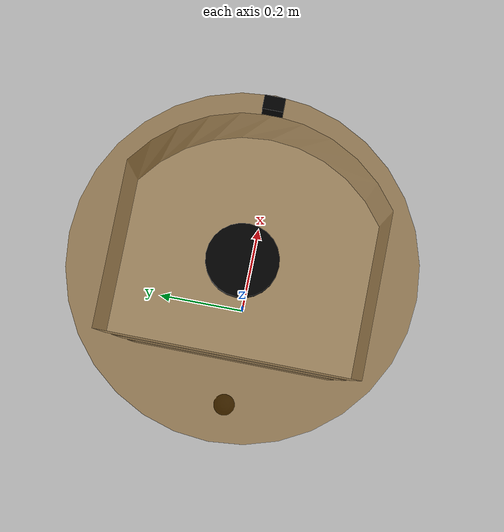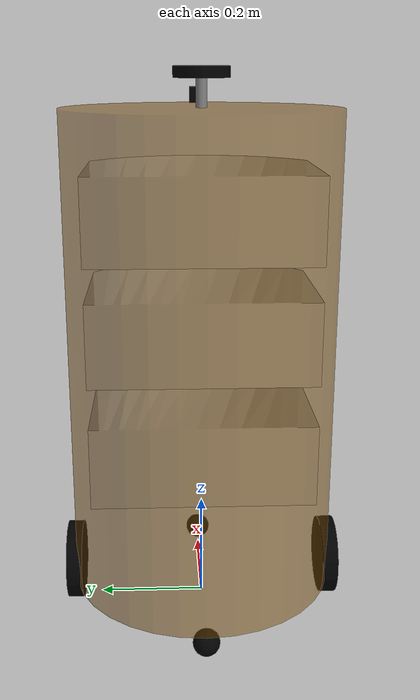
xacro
<?xml version="1.0" ?>
<!-- |    This document was autogenerated by xacro from test.xacro                     | -->
<!-- |    EDITING THIS FILE BY HAND IS NOT RECOMMENDED                                 | -->
<!-- 组合小车底盘与摄像头 -->
<robot name="my_car_camera">
  <!-- 质量  -->
  <!-- 底盘 -->
  <link name="base_footprint">
    <visual>
      <geometry>
        <sphere radius="0.001"/>
      </geometry>
    </visual>
  </link>
  <link name="base_link">
    <visual>
      <geometry>
        <mesh filename="/home/zj/graduate_design/src/zj_base/meshes/modle.stl"/>
      </geometry>
      <origin rpy="0 0 0" xyz="0 0 0"/>
      <material name="yellow">
        <color rgba="0.5 0.3 0.0 0.5"/>
      </material>
    </visual>
    <collision>
      <geometry>
        <cylinder length="0.9" radius="0.25"/>
      </geometry>
      <origin rpy="0 0 0" xyz="0 0 0"/>
    </collision>
    <inertial>
      <mass value="5.0"/>
      <inertia ixx="0.4156250000000001" ixy="0" ixz="0" iyy="0.4156250000000001" iyz="0" izz="0.15625"/>
    </inertial>
  </link>
  <joint name="base_link2base_footprint" type="fixed">
    <parent link="base_footprint"/>
    <child link="base_link"/>
    <origin xyz="0 0 0.5"/>
  </joint>
  <gazebo reference="base_link">
    <material>Gazebo/Yellow</material>
  </gazebo>
  <!-- 质量  -->
  <link name="left_wheel">
    <visual>
      <geometry>
        <cylinder length="0.03" radius="0.075"/>
      </geometry>
      <origin rpy="1.5707963 0.0 0.0" xyz="0.0 0.0 0.0"/>
      <material name="black">
        <color rgba="0.0 0.0 0.0 1.0"/>
      </material>
    </visual>
    <collision>
      <geometry>
        <cylinder length="0.03" radius="0.075"/>
      </geometry>
      <origin rpy="1.5707963 0.0 0.0" xyz="0.0 0.0 0.0"/>
    </collision>
    <inertial>
      <mass value="0.2"/>
      <inertia ixx="0.00029625" ixy="0" ixz="0" iyy="0.00029625" iyz="0" izz="0.0005625"/>
    </inertial>
  </link>
  <joint name="left_wheel2base_link" type="continuous">
    <parent link="base_link"/>
    <child link="left_wheel"/>
    <origin xyz="0 0.25 -0.425"/>
    <axis xyz="0 1 0"/>
  </joint>
  <gazebo reference="left_wheel">
    <material>Gazebo/Black</material>
  </gazebo>
  <link name="right_wheel">
    <visual>
      <geometry>
        <cylinder length="0.03" radius="0.075"/>
      </geometry>
      <origin rpy="1.5707963 0.0 0.0" xyz="0.0 0.0 0.0"/>
      <material name="black">
        <color rgba="0.0 0.0 0.0 1.0"/>
      </material>
    </visual>
    <collision>
      <geometry>
        <cylinder length="0.03" radius="0.075"/>
      </geometry>
      <origin rpy="1.5707963 0.0 0.0" xyz="0.0 0.0 0.0"/>
    </collision>
    <inertial>
      <mass value="0.2"/>
      <inertia ixx="0.00029625" ixy="0" ixz="0" iyy="0.00029625" iyz="0" izz="0.0005625"/>
    </inertial>
  </link>
  <joint name="right_wheel2base_link" type="continuous">
    <parent link="base_link"/>
    <child link="right_wheel"/>
    <origin xyz="0 -0.25 -0.425"/>
    <axis xyz="0 1 0"/>
  </joint>
  <gazebo reference="right_wheel">
    <material>Gazebo/Black</material>
  </gazebo>
  <!-- 质量  -->
  <link name="front_wheel">
    <visual>
      <geometry>
        <sphere radius="0.025"/>
      </geometry>
      <origin rpy="0 0 0" xyz="0 0 0"/>
      <material name="black">
        <color rgba="0.0 0.0 0.0 1.0"/>
      </material>
    </visual>
    <collision>
      <geometry>
        <sphere radius="0.025"/>
      </geometry>
      <origin rpy="0 0 0" xyz="0 0 0"/>
    </collision>
    <inertial>
      <mass value="0.1"/>
      <inertia ixx="2.5000000000000005e-05" ixy="0" ixz="0" iyy="2.5000000000000005e-05" iyz="0" izz="2.5000000000000005e-05"/>
    </inertial>
  </link>
  <joint name="front_wheel2base_link" type="continuous">
    <parent link="base_link"/>
    <child link="front_wheel"/>
    <origin xyz="0.225 0 -0.47500000000000003"/>
    <axis xyz="1 0 0"/>
  </joint>
  <gazebo reference="front_wheel">
    <material>Gazebo/Black</material>
    <mu1>0.0</mu1>
    <!-- 滚动摩擦 -->
    <mu2>0.0</mu2>
    <!-- 滑动摩擦 -->
    <kp>1000000.0</kp>
    <kd>100.0</kd>
  </gazebo>
  <link name="back_wheel">
    <visual>
      <geometry>
        <sphere radius="0.025"/>
      </geometry>
      <origin rpy="0 0 0" xyz="0 0 0"/>
      <material name="black">
        <color rgba="0.0 0.0 0.0 1.0"/>
      </material>
    </visual>
    <collision>
      <geometry>
        <sphere radius="0.025"/>
      </geometry>
      <origin rpy="0 0 0" xyz="0 0 0"/>
    </collision>
    <inertial>
      <mass value="0.1"/>
      <inertia ixx="2.5000000000000005e-05" ixy="0" ixz="0" iyy="2.5000000000000005e-05" iyz="0" izz="2.5000000000000005e-05"/>
    </inertial>
  </link>
  <joint name="back_wheel2base_link" type="continuous">
    <parent link="base_link"/>
    <child link="back_wheel"/>
    <origin xyz="-0.225 0 -0.47500000000000003"/>
    <axis xyz="1 0 0"/>
  </joint>
  <gazebo reference="back_wheel">
    <material>Gazebo/Black</material>
    <mu1>0.0</mu1>
    <!-- 滚动摩擦 -->
    <mu2>0.0</mu2>
    <!-- 滑动摩擦 -->
    <kp>1000000.0</kp>
    <kd>100.0</kd>
  </gazebo>
  <transmission name="left_wheel2base_link_trans">
    <type>transmission_interface/SimpleTransmission</type>
    <joint name="left_wheel2base_link">
      <hardwareInterface>hardware_interface/VelocityJointInterface</hardwareInterface>
    </joint>
    <actuator name="left_wheel2base_link_motor">
      <hardwareInterface>hardware_interface/VelocityJointInterface</hardwareInterface>
      <mechanicalReduction>1</mechanicalReduction>
    </actuator>
  </transmission>
  <transmission name="right_wheel2base_link_trans">
    <type>transmission_interface/SimpleTransmission</type>
    <joint name="right_wheel2base_link">
      <hardwareInterface>hardware_interface/VelocityJointInterface</hardwareInterface>
    </joint>
    <actuator name="right_wheel2base_link_motor">
      <hardwareInterface>hardware_interface/VelocityJointInterface</hardwareInterface>
      <mechanicalReduction>1</mechanicalReduction>
    </actuator>
  </transmission>
  <!-- Gazebo ROS Control 插件 -->
  <gazebo>
    <plugin filename="libgazebo_ros_control.so" name="gazebo_ros_control">
      <robotNamespace>/</robotNamespace>
      <robotSimType>gazebo_ros_control/DefaultRobotHWSim</robotSimType>
      <controlPeriod>0.001</controlPeriod>
    </plugin>
  </gazebo>
  <!-- 支架安装的z坐标:底盘高度 / 2 + 支架高度 / 2  -->
  <link name="suport">
    <visual>
      <geometry>
        <cylinder length="0.05" radius="0.01"/>
      </geometry>
      <origin rpy="0 0 0" xyz="0.0 0.0 0.0"/>
      <material name="grey">
        <color rgba="0.5 0.5 0.5 1.0"/>
      </material>
    </visual>
    <collision>
      <geometry>
        <cylinder length="0.05" radius="0.01"/>
      </geometry>
      <origin rpy="0 0 0" xyz="0.0 0.0 0.0"/>
    </collision>
    <inertial>
      <origin xyz="0 0 0"/>
      <mass value="0.1"/>
      <inertia ixx="0.0001" ixy="0" ixz="0" iyy="0.0001" iyz="0" izz="0.0001"/>
    </inertial>
  </link>
  <joint name="support2base_link" type="fixed">
    <parent link="base_link"/>
    <child link="suport"/>
    <origin rpy="0 0 0" xyz="0 0 0.47500000000000003"/>
  </joint>
  <link name="laser">
    <visual>
      <geometry>
        <cylinder length="0.02" radius="0.05"/>
      </geometry>
      <origin rpy="0 0 0" xyz="0 0 0"/>
      <material name="black">
        <color rgba="0.0 0.0 0.0 1.0"/>
      </material>
    </visual>
    <collision>
      <geometry>
        <cylinder length="0.02" radius="0.05"/>
      </geometry>
      <origin rpy="0 0 0" xyz="0 0 0"/>
    </collision>
    <inertial>
      <origin xyz="0 0 0"/>
      <mass value="0.2"/>
      <inertia ixx="0.0001" ixy="0" ixz="0" iyy="0.0001" iyz="0" izz="0.0001"/>
    </inertial>
  </link>
  <joint name="laser2support" type="fixed">
    <parent link="suport"/>
    <child link="laser"/>
    <origin rpy="0 0 0" xyz="0 0 0.035"/>
  </joint>
  <!-- 雷达 -->
  <gazebo reference="laser">
    <sensor name="rplidar" type="ray">
      <pose>0 0 0 0 0 0</pose>
      <visualize>false</visualize>
      <update_rate>5.5</update_rate>
      <ray>
        <scan>
          <horizontal>
            <samples>360</samples>
            <resolution>1</resolution>
            <min_angle>-3.14159</min_angle>
            <max_angle>3.14159</max_angle>
          </horizontal>
        </scan>
        <range>
          <min>0.10</min>
          <max>30.0</max>
          <resolution>0.01</resolution>
        </range>
        <noise>
          <type>gaussian</type>
          <mean>0.0</mean>
          <stddev>0.01</stddev>
        </noise>
      </ray>
      <plugin filename="libgazebo_ros_laser.so" name="gazebo_rplidar">
        <topicName>/scan</topicName>
        <frameName>laser</frameName>
      </plugin>
    </sensor>
  </gazebo>
  <link name="camera">
    <visual>
      <geometry>
        <box size="0.03 0.02 0.03"/>
      </geometry>
      <origin rpy="0 0 1.5705" xyz="0 0 0"/>
      <material name="black">
        <color rgba="0.0 0.0 0.0 1.0"/>
      </material>
    </visual>
    <collision>
      <geometry>
        <box size="0.03 0.02 0.03"/>
      </geometry>
      <origin rpy="0 0 1.5705" xyz="0 0 0"/>
    </collision>
    <inertial>
      <origin xyz="0 0 0"/>
      <mass value="0.1"/>
      <inertia ixx="0.0001" ixy="0" ixz="0" iyy="0.0001" iyz="0" izz="0.0001"/>
    </inertial>
  </link>
  <joint name="camera2base_link" type="fixed">
    <parent link="base_link"/>
    <child link="camera"/>
    <origin rpy="0 0 0" xyz="0.23 0.0 0.465"/>
  </joint>
  <gazebo reference="camera">
    <material>Gazebo/Black</material>
  </gazebo>
  <!-- 被引用的link -->
  <gazebo reference="camera">
    <!-- 类型设置为 camara -->
    <sensor name="camera_node" type="camera">
      <update_rate>30.0</update_rate>
      <!-- 更新频率 -->
      <!-- 摄像头基本信息设置 -->
      <camera name="head">
        <horizontal_fov>1.3962634</horizontal_fov>
        <image>
          <width>1280</width>
          <height>720</height>
          <format>R8G8B8</format>
        </image>
        <clip>
          <near>0.02</near>
          <far>300</far>
        </clip>
        <noise>
          <type>gaussian</type>
          <mean>0.0</mean>
          <stddev>0.007</stddev>
        </noise>
      </camera>
      <!-- 核心插件 -->
      <plugin filename="libgazebo_ros_camera.so" name="gazebo_camera">
        <alwaysOn>true</alwaysOn>
        <updateRate>0.0</updateRate>
        <cameraName>/camera</cameraName>
        <imageTopicName>image_raw</imageTopicName>
        <cameraInfoTopicName>camera_info</cameraInfoTopicName>
        <frameName>camera</frameName>
        <hackBaseline>0.07</hackBaseline>
        <distortionK1>0.0</distortionK1>
        <distortionK2>0.0</distortionK2>
        <distortionK3>0.0</distortionK3>
        <distortionT1>0.0</distortionT1>
        <distortionT2>0.0</distortionT2>
      </plugin>
    </sensor>
  </gazebo>
  <gazebo reference="kinect link名称">
    <sensor name="camera" type="depth">
      <always_on>true</always_on>
      <update_rate>20.0</update_rate>
      <camera>
        <horizontal_fov>1.0470000000000002</horizontal_fov>
        <image>
          <format>R8G8B8</format>
          <width>640</width>
          <height>480</height>
        </image>
        <clip>
          <near>0.05</near>
          <far>8.0</far>
        </clip>
      </camera>
      <plugin filename="libgazebo_ros_openni_kinect.so" name="kinect_camera_controller">
        <cameraName>camera</cameraName>
        <alwaysOn>true</alwaysOn>
        <updateRate>10</updateRate>
        <imageTopicName>rgb/image_raw</imageTopicName>
        <depthImageTopicName>depth/image_raw</depthImageTopicName>
        <pointCloudTopicName>depth/points</pointCloudTopicName>
        <cameraInfoTopicName>rgb/camera_info</cameraInfoTopicName>
        <depthImageCameraInfoTopicName>depth/camera_info</depthImageCameraInfoTopicName>
        <frameName>kinect link名称</frameName>
        <baseline>0.1</baseline>
        <distortion_k1>0.0</distortion_k1>
        <distortion_k2>0.0</distortion_k2>
        <distortion_k3>0.0</distortion_k3>
        <distortion_t1>0.0</distortion_t1>
        <distortion_t2>0.0</distortion_t2>
        <pointCloudCutoff>0.4</pointCloudCutoff>
      </plugin>
    </sensor>
  </gazebo>
  <!-- 抽屉组件1 - 只优化物理参数，保持位置不变 -->
  <link name="drawer">
    <visual>
      <geometry>
        <mesh filename="package://zj_base/meshes/box.stl"/>
      </geometry>
      <origin rpy="0 0 0" xyz="0 0 0"/>
      <material name="drawer_material">
        <color rgba="0.8 0.8 0.8 1.0"/>
      </material>
    </visual>
    <collision>
      <geometry>
        <mesh filename="package://zj_base/meshes/box.stl"/>
      </geometry>
      <origin rpy="0 0 0" xyz="0 0 0"/>
      <surface>
        <friction>
          <ode>
            <mu>0.3</mu>
            <!-- 大幅降低摩擦 -->
            <mu2>0.1</mu2>
            <!-- 大幅降低摩擦 -->
          </ode>
        </friction>
      </surface>
    </collision>
    <inertial>
      <origin xyz="0 0 0"/>
      <mass value="0.5"/>
      <!-- 减轻质量 -->
      <inertia ixx="0.0001" ixy="0" ixz="0" iyy="0.0001" iyz="0" izz="0.0001"/>
      <!-- 减小惯性 -->
    </inertial>
  </link>
  <joint name="drawer2base_link" type="prismatic">
    <parent link="base_link"/>
    <child link="drawer"/>
    <origin rpy="0 0 0" xyz="0 0 0"/>
    <!-- 保持位置不变 -->
    <axis xyz="1 0 0"/>
    <limit effort="500" lower="0" upper="0.2" velocity="2.0"/>
    <!-- 只增加effort -->
    <dynamics damping="0.01" friction="0.0"/>
    <!-- 大幅减少阻尼和摩擦 -->
  </joint>
  <gazebo reference="drawer">
    <material>Gazebo/Grey</material>
    <mu1>0.3</mu1>
    <!-- 降低Gazebo摩擦 -->
    <mu2>0.1</mu2>
    <!-- 降低Gazebo摩擦 -->
    <kp>100000.0</kp>
    <!-- 降低接触刚度 -->
    <kd>100.0</kd>
    <!-- 降低接触阻尼 -->
  </gazebo>
  <gazebo reference="drawer2base_link">
    <stopCfm>0.0</stopCfm>
    <stopErp>0.2</stopErp>
    <!-- 降低ERP -->
    <provideFeedback>true</provideFeedback>
    <physics>
      <ode>
        <limit>
          <cfm>0.0</cfm>
          <erp>0.2</erp>
          <!-- 降低ERP -->
        </limit>
        <fdir1>1 0 0</fdir1>
        <friction>1.0 0.5 0.0</friction>
        <!-- 大幅降低摩擦 -->
        <suspension>
          <cfm>0.0</cfm>
          <erp>0.2</erp>
          <!-- 降低ERP -->
        </suspension>
      </ode>
    </physics>
  </gazebo>
  <!-- 抽屉组件2 - 同样只优化物理参数 -->
  <link name="drawer2">
    <visual>
      <geometry>
        <mesh filename="package://zj_base/meshes/box2.stl"/>
      </geometry>
      <origin rpy="0 0 0" xyz="0 0 0"/>
      <material name="drawer_material">
        <color rgba="0.8 0.8 0.8 1.0"/>
      </material>
    </visual>
    <collision>
      <geometry>
        <box size="0.1 0.15 0.05"/>
      </geometry>
      <origin rpy="0 0 0" xyz="0 0 0"/>
      <surface>
        <friction>
          <ode>
            <mu>0.3</mu>
            <mu2>0.1</mu2>
          </ode>
        </friction>
      </surface>
    </collision>
    <inertial>
      <origin xyz="0 0 0"/>
      <mass value="0.5"/>
      <inertia ixx="0.0001" ixy="0" ixz="0" iyy="0.0001" iyz="0" izz="0.0001"/>
    </inertial>
  </link>
  <joint name="drawer22base_link" type="prismatic">
    <parent link="base_link"/>
    <child link="drawer2"/>
    <origin rpy="0 0 0" xyz="0 0 0"/>
    <!-- 保持位置不变 -->
    <axis xyz="1 0 0"/>
    <limit effort="500" lower="0" upper="0.2" velocity="2.0"/>
    <dynamics damping="0.01" friction="0.0"/>
  </joint>
  <gazebo reference="drawer2">
    <material>Gazebo/Grey</material>
    <mu1>0.3</mu1>
    <mu2>0.1</mu2>
    <kp>100000.0</kp>
    <kd>100.0</kd>
  </gazebo>
  <gazebo reference="drawer22base_link">
    <stopCfm>0.0</stopCfm>
    <stopErp>0.2</stopErp>
    <provideFeedback>true</provideFeedback>
    <physics>
      <ode>
        <limit>
          <cfm>0.0</cfm>
          <erp>0.2</erp>
        </limit>
        <fdir1>1 0 0</fdir1>
        <friction>1.0 0.5 0.0</friction>
        <suspension>
          <cfm>0.0</cfm>
          <erp>0.2</erp>
        </suspension>
      </ode>
    </physics>
  </gazebo>
  <!-- 抽屉组件3 - 同样只优化物理参数 -->
  <link name="drawer3">
    <visual>
      <geometry>
        <mesh filename="package://zj_base/meshes/box3.stl"/>
      </geometry>
      <origin rpy="0 0 0" xyz="0 0 0"/>
      <material name="drawer_material">
        <color rgba="0.8 0.8 0.8 1.0"/>
      </material>
    </visual>
    <collision>
      <geometry>
        <box size="0.1 0.15 0.05"/>
      </geometry>
      <origin rpy="0 0 0" xyz="0 0 0"/>
      <surface>
        <friction>
          <ode>
            <mu>0.3</mu>
            <mu2>0.1</mu2>
          </ode>
        </friction>
      </surface>
    </collision>
    <inertial>
      <origin xyz="0 0 0"/>
      <mass value="0.5"/>
      <inertia ixx="0.0001" ixy="0" ixz="0" iyy="0.0001" iyz="0" izz="0.0001"/>
    </inertial>
  </link>
  <joint name="drawer32base_link" type="prismatic">
    <parent link="base_link"/>
    <child link="drawer3"/>
    <origin rpy="0 0 0" xyz="0 0 0"/>
    <!-- 保持位置不变 -->
    <axis xyz="1 0 0"/>
    <limit effort="500" lower="0" upper="0.2" velocity="2.0"/>
    <dynamics damping="0.01" friction="0.0"/>
  </joint>
  <gazebo reference="drawer3">
    <material>Gazebo/Grey</material>
    <mu1>0.3</mu1>
    <mu2>0.1</mu2>
    <kp>100000.0</kp>
    <kd>100.0</kd>
  </gazebo>
  <gazebo reference="drawer32base_link">
    <stopCfm>0.0</stopCfm>
    <stopErp>0.2</stopErp>
    <provideFeedback>true</provideFeedback>
    <physics>
      <ode>
        <limit>
          <cfm>0.0</cfm>
          <erp>0.2</erp>
        </limit>
        <fdir1>1 0 0</fdir1>
        <friction>1.0 0.5 0.0</friction>
        <suspension>
          <cfm>0.0</cfm>
          <erp>0.2</erp>
        </suspension>
      </ode>
    </physics>
  </gazebo>
  <!-- Gazebo ROS Control 插件 -->
  <!-- 抽屉1位置控制器 -->
  <gazebo>
    <plugin filename="libgazebo_ros_joint_control.so" name="drawer1_controller">
      <jointName>drawer2base_link</jointName>
      <type>position</type>
      <topicName>drawer1/command</topicName>
      <pid>
        <p>800.0</p>
        <i>5.0</i>
        <d>120.0</d>
      </pid>
    </plugin>
  </gazebo>
  <!-- 抽屉2位置控制器 -->
  <gazebo>
    <plugin filename="libgazebo_ros_joint_control.so" name="drawer2_controller">
      <jointName>drawer22base_link</jointName>
      <type>position</type>
      <topicName>drawer2/command</topicName>
      <pid>
        <p>800.0</p>
        <i>5.0</i>
        <d>120.0</d>
      </pid>
    </plugin>
  </gazebo>
  <!-- 抽屉3位置控制器 -->
  <transmission name="drawer2base_link_trans">
    <type>transmission_interface/SimpleTransmission</type>
    <joint name="drawer2base_link">
      <hardwareInterface>hardware_interface/EffortJointInterface</hardwareInterface>
    </joint>
    <actuator name="drawer2base_link_motor">
      <hardwareInterface>hardware_interface/EffortJointInterface</hardwareInterface>
      <mechanicalReduction>1</mechanicalReduction>
    </actuator>
  </transmission>
  <transmission name="drawer22base_link_trans">
    <type>transmission_interface/SimpleTransmission</type>
    <joint name="drawer22base_link">
      <hardwareInterface>hardware_interface/EffortJointInterface</hardwareInterface>
    </joint>
    <actuator name="drawer22base_link_motor">
      <hardwareInterface>hardware_interface/EffortJointInterface</hardwareInterface>
      <mechanicalReduction>1</mechanicalReduction>
    </actuator>
  </transmission>
  <transmission name="drawer32base_link_trans">
    <type>transmission_interface/SimpleTransmission</type>
    <joint name="drawer32base_link">
      <hardwareInterface>hardware_interface/EffortJointInterface</hardwareInterface>
    </joint>
    <actuator name="drawer32base_link_motor">
      <hardwareInterface>hardware_interface/EffortJointInterface</hardwareInterface>
      <mechanicalReduction>1</mechanicalReduction>
    </actuator>
  </transmission>
  <!-- Gazebo插件配置 - 如果还没有在其他地方配置的话 -->
</robot>
